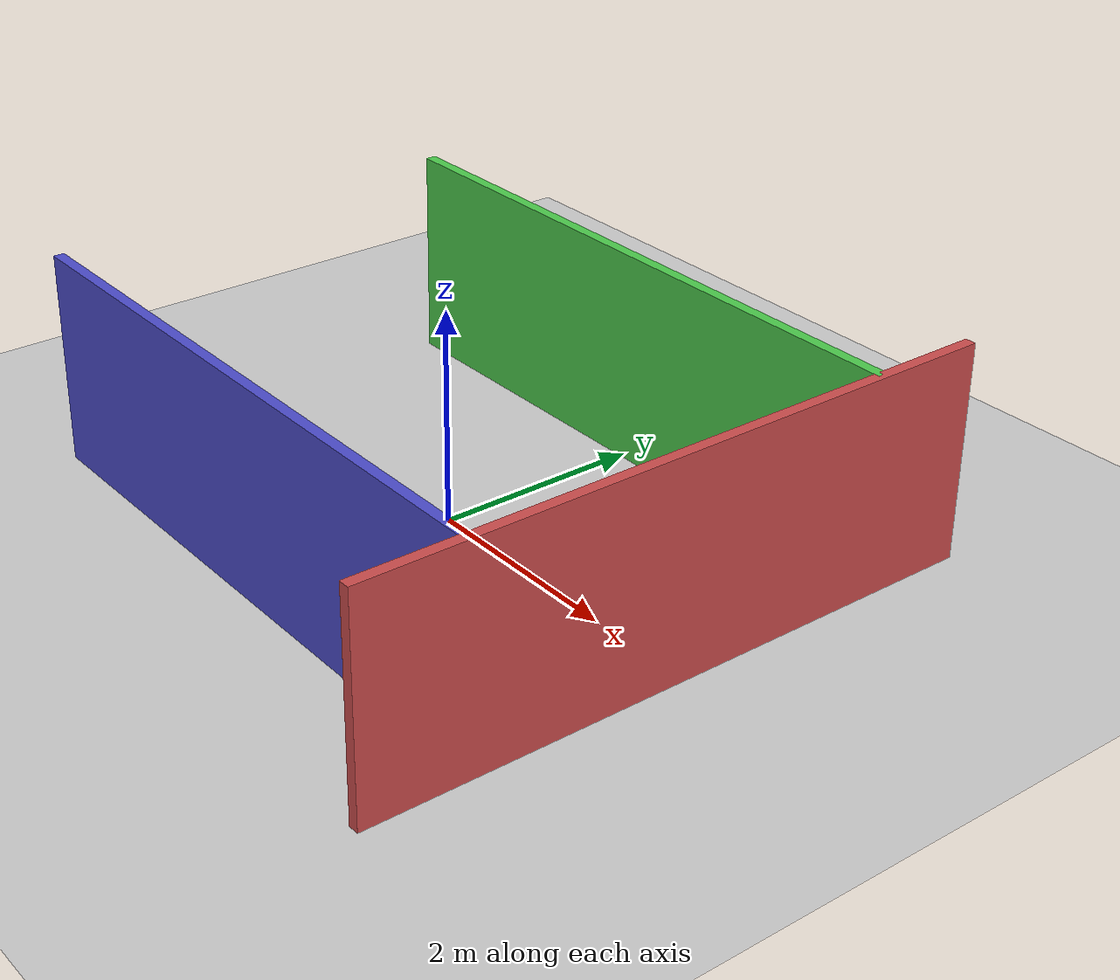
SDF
<?xml version="1.0"?>
<!--
Gazebo World - The Physics Arena
Where geometry meets gravity.
Where friction fights motion.
Where ROS learns it's mortal.
-->
<sdf version="1.6">
  <world name="pure_ros_world">

    <!-- Sun - Because even simulated worlds need light -->
    <include>
      <uri>model://sun</uri>
    </include>

    <!-- Ground Plane - Gravity's friend -->
    <include>
      <uri>model://ground_plane</uri>
    </include>

    <!-- Physics Engine Configuration -->
    <physics name="ode_physics" type="ode">
      <max_step_size>0.001</max_step_size>
      <real_time_factor>1.0</real_time_factor>
      <real_time_update_rate>1000</real_time_update_rate>

      <gravity>0 0 -9.81</gravity>

      <!-- ODE solver parameters -->
      <ode>
        <solver>
          <type>quick</type>
          <iters>50</iters>
          <sor>1.3</sor>
        </solver>
        <constraints>
          <cfm>0.0</cfm>
          <erp>0.2</erp>
          <contact_max_correcting_vel>100.0</contact_max_correcting_vel>
          <contact_surface_layer>0.001</contact_surface_layer>
        </constraints>
      </ode>
    </physics>

    <!-- Walls - So the robot has something to see -->

    <!-- Front Wall -->
    <model name="front_wall">
      <static>true</static>
      <pose>3 0 1 0 0 0</pose>
      <link name="link">
        <collision name="collision">
          <geometry>
            <box>
              <size>0.1 6 2</size>
            </box>
          </geometry>
        </collision>
        <visual name="visual">
          <geometry>
            <box>
              <size>0.1 6 2</size>
            </box>
          </geometry>
          <material>
            <ambient>0.8 0.3 0.3 1</ambient>
            <diffuse>0.8 0.3 0.3 1</diffuse>
          </material>
        </visual>
      </link>
    </model>

    <!-- Left Wall -->
    <model name="left_wall">
      <static>true</static>
      <pose>0 2 1 0 0 0</pose>
      <link name="link">
        <collision name="collision">
          <geometry>
            <box>
              <size>6 0.1 2</size>
            </box>
          </geometry>
        </collision>
        <visual name="visual">
          <geometry>
            <box>
              <size>6 0.1 2</size>
            </box>
          </geometry>
          <material>
            <ambient>0.3 0.8 0.3 1</ambient>
            <diffuse>0.3 0.8 0.3 1</diffuse>
          </material>
        </visual>
      </link>
    </model>

    <!-- Right Wall -->
    <model name="right_wall">
      <static>true</static>
      <pose>0 -2 1 0 0 0</pose>
      <link name="link">
        <collision name="collision">
          <geometry>
            <box>
              <size>6 0.1 2</size>
            </box>
          </geometry>
        </collision>
        <visual name="visual">
          <geometry>
            <box>
              <size>6 0.1 2</size>
            </box>
          </geometry>
          <material>
            <ambient>0.3 0.3 0.8 1</ambient>
            <diffuse>0.3 0.3 0.8 1</diffuse>
          </material>
        </visual>
      </link>
    </model>

    <!-- Obstacle 1 - A box to avoid -->
    <model name="obstacle1">
      <static>true</static>
      <pose>1.5 0.8 0.25 0 0 0</pose>
      <link name="link">
        <collision name="collision">
          <geometry>
            <box>
              <size>0.5 0.5 0.5</size>
            </box>
          </geometry>
        </collision>
        <visual name="visual">
          <geometry>
            <box>
              <size>0.5 0.5 0.5</size>
            </box>
          </geometry>
          <material>
            <ambient>0.9 0.9 0.1 1</ambient>
            <diffuse>0.9 0.9 0.1 1</diffuse>
          </material>
        </visual>
      </link>
    </model>

    <!-- Obstacle 2 - Another box -->
    <model name="obstacle2">
      <static>true</static>
      <pose>1.5 -0.8 0.25 0 0 0</pose>
      <link name="link">
        <collision name="collision">
          <geometry>
            <box>
              <size>0.5 0.5 0.5</size>
            </box>
          </geometry>
        </collision>
        <visual name="visual">
          <geometry>
            <box>
              <size>0.5 0.5 0.5</size>
            </box>
          </geometry>
          <material>
            <ambient>0.9 0.1 0.9 1</ambient>
            <diffuse>0.9 0.1 0.9 1</diffuse>
          </material>
        </visual>
      </link>
    </model>

    <!-- Scene lighting -->
    <light type="directional" name="directional_light">
      <cast_shadows>true</cast_shadows>
      <pose>0 0 10 0 0 0</pose>
      <diffuse>0.8 0.8 0.8 1</diffuse>
      <specular>0.2 0.2 0.2 1</specular>
      <attenuation>
        <range>1000</range>
        <constant>0.9</constant>
        <linear>0.01</linear>
        <quadratic>0.001</quadratic>
      </attenuation>
      <direction>-0.5 0.1 -0.9</direction>
    </light>

  </world>
</sdf>
